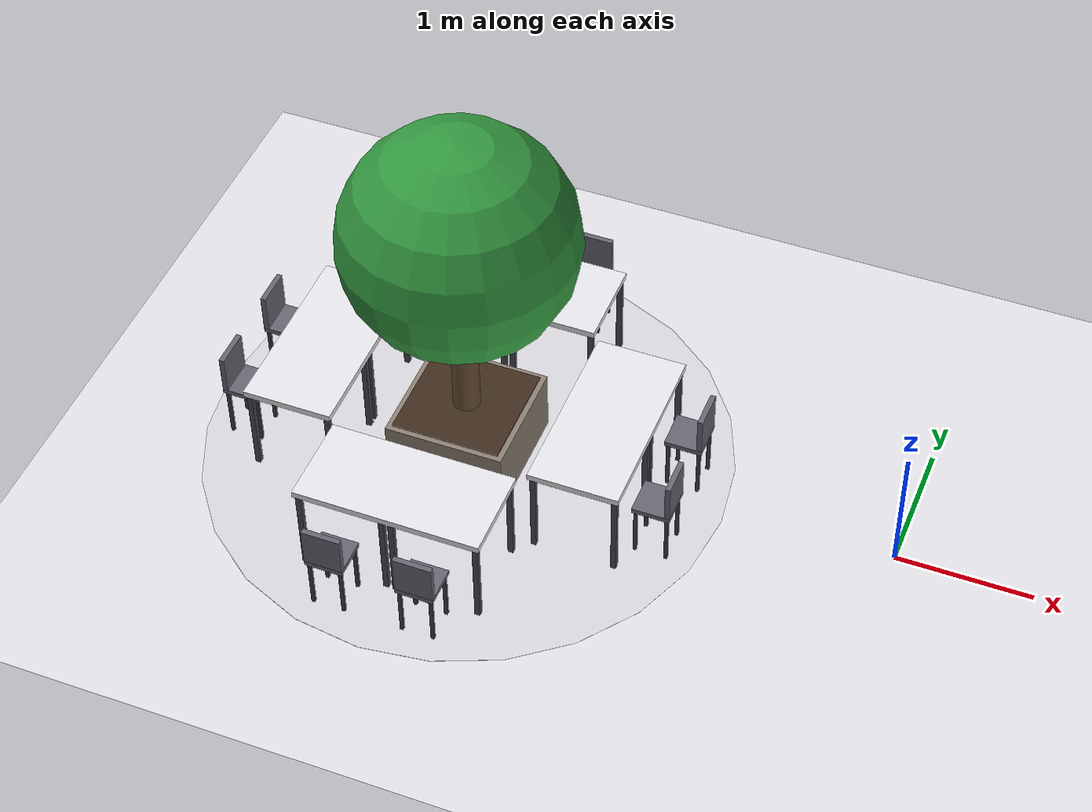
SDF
<sdf version="1.8">
 <world name="restaurant_blueprint_world">
  <model name="ground_plane">
   <static>true</static>
   <link name="link">
    <collision name="collision">
     <geometry><plane><normal>0 0 1</normal><size>120 120</size></plane></geometry>
    </collision>
    <visual name="visual">
     <geometry><plane><normal>0 0 1</normal><size>120 120</size></plane></geometry>
     <material>
      <ambient>0.88 0.88 0.90 1</ambient>
      <diffuse>0.88 0.88 0.90 1</diffuse>
      <specular>0.1 0.1 0.1 1</specular>
     </material>
    </visual>
   </link>
  </model>
  <model name="restaurant_boundary">
   <static>true</static>
   <link name="group_center">
    <visual name="group_center_floor_disc_vis">
     <pose>-3.195 -0.140 0.003 0 0 0</pose>
     <geometry><cylinder><radius>1.95</radius><length>0.002</length></cylinder></geometry>
     <material><ambient>0.84 0.84 0.86 1</ambient><diffuse>0.84 0.84 0.86 1</diffuse></material>
    </visual>
    <visual name="center_planter_vis">
     <pose>-3.195 -0.140 0.250 0 0 0</pose>
     <geometry><box><size>0.89 0.89 0.50</size></box></geometry>
     <material><ambient>0.45 0.40 0.35 1</ambient><diffuse>0.55 0.50 0.45 1</diffuse></material>
    </visual>
    <collision name="center_planter_col">
     <pose>-3.195 -0.140 0.250 0 0 0</pose>
     <geometry><box><size>0.89 0.89 0.50</size></box></geometry>
    </collision>
    <visual name="center_planter_soil_vis">
     <pose>-3.195 -0.140 0.505 0 0 0</pose>
     <geometry><box><size>0.81 0.81 0.02</size></box></geometry>
     <material><ambient>0.20 0.15 0.10 1</ambient><diffuse>0.25 0.18 0.12 1</diffuse></material>
    </visual>
    <visual name="center_tree_trunk_vis">
     <pose>-3.195 -0.140 1.200 0 0 0</pose>
     <geometry><cylinder><radius>0.10</radius><length>1.40</length></cylinder></geometry>
     <material><ambient>0.35 0.25 0.15 1</ambient><diffuse>0.40 0.30 0.20 1</diffuse></material>
    </visual>
    <collision name="center_tree_trunk_col">
     <pose>-3.195 -0.140 1.200 0 0 0</pose>
     <geometry><cylinder><radius>0.10</radius><length>1.40</length></cylinder></geometry>
    </collision>
    <visual name="center_tree_foliage_vis">
     <pose>-3.195 -0.140 2.100 0 0 0</pose>
     <geometry><sphere><radius>0.85</radius></sphere></geometry>
     <material><ambient>0.15 0.50 0.20 1</ambient><diffuse>0.20 0.60 0.25 1</diffuse></material>
    </visual>
    <visual name="center_table_n_vis">
     <pose>-3.195 0.940 0.725 0.0000 0.0000 0.0000</pose>
     <geometry><box><size>1.38 0.67 0.05</size></box></geometry>
     <material><ambient>0.85 0.85 0.88 1</ambient><diffuse>0.90 0.90 0.92 1</diffuse></material>
    </visual>
    <visual name="center_table_n_leg_1_vis">
     <pose>-2.540 1.240 0.350 0 0 0.0000</pose>
     <geometry><box><size>0.04 0.04 0.70</size></box></geometry>
     <material><ambient>0.22 0.22 0.25 1</ambient><diffuse>0.28 0.28 0.32 1</diffuse></material>
    </visual>
    <visual name="center_table_n_leg_2_vis">
     <pose>-2.540 0.640 0.350 0 0 0.0000</pose>
     <geometry><box><size>0.04 0.04 0.70</size></box></geometry>
     <material><ambient>0.22 0.22 0.25 1</ambient><diffuse>0.28 0.28 0.32 1</diffuse></material>
    </visual>
    <visual name="center_table_n_leg_3_vis">
     <pose>-3.160 1.240 0.350 0 0 0.0000</pose>
     <geometry><box><size>0.04 0.04 0.70</size></box></geometry>
     <material><ambient>0.22 0.22 0.25 1</ambient><diffuse>0.28 0.28 0.32 1</diffuse></material>
    </visual>
    <visual name="center_table_n_leg_4_vis">
     <pose>-3.160 0.640 0.350 0 0 0.0000</pose>
     <geometry><box><size>0.04 0.04 0.70</size></box></geometry>
     <material><ambient>0.22 0.22 0.25 1</ambient><diffuse>0.28 0.28 0.32 1</diffuse></material>
    </visual>
    <visual name="center_table_n_leg_5_vis">
     <pose>-3.230 1.240 0.350 0 0 0.0000</pose>
     <geometry><box><size>0.04 0.04 0.70</size></box></geometry>
     <material><ambient>0.22 0.22 0.25 1</ambient><diffuse>0.28 0.28 0.32 1</diffuse></material>
    </visual>
    <visual name="center_table_n_leg_6_vis">
     <pose>-3.230 0.640 0.350 0 0 0.0000</pose>
     <geometry><box><size>0.04 0.04 0.70</size></box></geometry>
     <material><ambient>0.22 0.22 0.25 1</ambient><diffuse>0.28 0.28 0.32 1</diffuse></material>
    </visual>
    <visual name="center_table_n_leg_7_vis">
     <pose>-3.850 1.240 0.350 0 0 0.0000</pose>
     <geometry><box><size>0.04 0.04 0.70</size></box></geometry>
     <material><ambient>0.22 0.22 0.25 1</ambient><diffuse>0.28 0.28 0.32 1</diffuse></material>
    </visual>
    <visual name="center_table_n_leg_8_vis">
     <pose>-3.850 0.640 0.350 0 0 0.0000</pose>
     <geometry><box><size>0.04 0.04 0.70</size></box></geometry>
     <material><ambient>0.22 0.22 0.25 1</ambient><diffuse>0.28 0.28 0.32 1</diffuse></material>
    </visual>
    <collision name="center_table_n_col">
     <pose>-3.195 0.940 0.725 0.0000 0.0000 0.0000</pose>
     <geometry><box><size>1.38 0.67 0.05</size></box></geometry>
    </collision>
    <collision name="center_table_n_leg_1_col">
     <pose>-2.540 1.240 0.350 0 0 0.0000</pose>
     <geometry><box><size>0.04 0.04 0.70</size></box></geometry>
    </collision>
    <collision name="center_table_n_leg_2_col">
     <pose>-2.540 0.640 0.350 0 0 0.0000</pose>
     <geometry><box><size>0.04 0.04 0.70</size></box></geometry>
    </collision>
    <collision name="center_table_n_leg_3_col">
     <pose>-3.160 1.240 0.350 0 0 0.0000</pose>
     <geometry><box><size>0.04 0.04 0.70</size></box></geometry>
    </collision>
    <collision name="center_table_n_leg_4_col">
     <pose>-3.160 0.640 0.350 0 0 0.0000</pose>
     <geometry><box><size>0.04 0.04 0.70</size></box></geometry>
    </collision>
    <collision name="center_table_n_leg_5_col">
     <pose>-3.230 1.240 0.350 0 0 0.0000</pose>
     <geometry><box><size>0.04 0.04 0.70</size></box></geometry>
    </collision>
    <collision name="center_table_n_leg_6_col">
     <pose>-3.230 0.640 0.350 0 0 0.0000</pose>
     <geometry><box><size>0.04 0.04 0.70</size></box></geometry>
    </collision>
    <collision name="center_table_n_leg_7_col">
     <pose>-3.850 1.240 0.350 0 0 0.0000</pose>
     <geometry><box><size>0.04 0.04 0.70</size></box></geometry>
    </collision>
    <collision name="center_table_n_leg_8_col">
     <pose>-3.850 0.640 0.350 0 0 0.0000</pose>
     <geometry><box><size>0.04 0.04 0.70</size></box></geometry>
    </collision>
    <visual name="center_chair_n1_seat_vis">
     <pose>-3.530 1.436 0.430 0.0000 0.0000 0.0000</pose>
     <geometry><box><size>0.28 0.28 0.04</size></box></geometry>
     <material><ambient>0.30 0.30 0.33 1</ambient><diffuse>0.40 0.40 0.45 1</diffuse></material>
    </visual>
    <visual name="center_chair_n1_back_vis">
     <pose>-3.530 1.556 0.600 0 0 0.0000</pose>
     <geometry><box><size>0.28 0.04 0.30</size></box></geometry>
     <material><ambient>0.30 0.30 0.33 1</ambient><diffuse>0.40 0.40 0.45 1</diffuse></material>
    </visual>
    <visual name="center_chair_n1_leg_1_vis">
     <pose>-3.415 1.551 0.205 0 0 0.0000</pose>
     <geometry><box><size>0.025 0.025 0.41</size></box></geometry>
     <material><ambient>0.20 0.20 0.22 1</ambient><diffuse>0.25 0.25 0.28 1</diffuse></material>
    </visual>
    <visual name="center_chair_n1_leg_2_vis">
     <pose>-3.645 1.551 0.205 0 0 0.0000</pose>
     <geometry><box><size>0.025 0.025 0.41</size></box></geometry>
     <material><ambient>0.20 0.20 0.22 1</ambient><diffuse>0.25 0.25 0.28 1</diffuse></material>
    </visual>
    <visual name="center_chair_n1_leg_3_vis">
     <pose>-3.415 1.321 0.205 0 0 0.0000</pose>
     <geometry><box><size>0.025 0.025 0.41</size></box></geometry>
     <material><ambient>0.20 0.20 0.22 1</ambient><diffuse>0.25 0.25 0.28 1</diffuse></material>
    </visual>
    <visual name="center_chair_n1_leg_4_vis">
     <pose>-3.645 1.321 0.205 0 0 0.0000</pose>
     <geometry><box><size>0.025 0.025 0.41</size></box></geometry>
     <material><ambient>0.20 0.20 0.22 1</ambient><diffuse>0.25 0.25 0.28 1</diffuse></material>
    </visual>
    <collision name="center_chair_n1_seat_col">
     <pose>-3.530 1.436 0.430 0.0000 0.0000 0.0000</pose>
     <geometry><box><size>0.28 0.28 0.04</size></box></geometry>
    </collision>
    <collision name="center_chair_n1_back_col">
     <pose>-3.530 1.556 0.600 0 0 0.0000</pose>
     <geometry><box><size>0.28 0.04 0.30</size></box></geometry>
    </collision>
    <collision name="center_chair_n1_leg_1_col">
     <pose>-3.415 1.551 0.205 0 0 0.0000</pose>
     <geometry><box><size>0.025 0.025 0.41</size></box></geometry>
    </collision>
    <collision name="center_chair_n1_leg_2_col">
     <pose>-3.645 1.551 0.205 0 0 0.0000</pose>
     <geometry><box><size>0.025 0.025 0.41</size></box></geometry>
    </collision>
    <collision name="center_chair_n1_leg_3_col">
     <pose>-3.415 1.321 0.205 0 0 0.0000</pose>
     <geometry><box><size>0.025 0.025 0.41</size></box></geometry>
    </collision>
    <collision name="center_chair_n1_leg_4_col">
     <pose>-3.645 1.321 0.205 0 0 0.0000</pose>
     <geometry><box><size>0.025 0.025 0.41</size></box></geometry>
    </collision>
    <visual name="center_chair_n2_seat_vis">
     <pose>-2.860 1.436 0.430 0.0000 0.0000 0.0000</pose>
     <geometry><box><size>0.28 0.28 0.04</size></box></geometry>
     <material><ambient>0.30 0.30 0.33 1</ambient><diffuse>0.40 0.40 0.45 1</diffuse></material>
    </visual>
    <visual name="center_chair_n2_back_vis">
     <pose>-2.860 1.556 0.600 0 0 0.0000</pose>
     <geometry><box><size>0.28 0.04 0.30</size></box></geometry>
     <material><ambient>0.30 0.30 0.33 1</ambient><diffuse>0.40 0.40 0.45 1</diffuse></material>
    </visual>
    <visual name="center_chair_n2_leg_1_vis">
     <pose>-2.745 1.551 0.205 0 0 0.0000</pose>
     <geometry><box><size>0.025 0.025 0.41</size></box></geometry>
     <material><ambient>0.20 0.20 0.22 1</ambient><diffuse>0.25 0.25 0.28 1</diffuse></material>
    </visual>
    <visual name="center_chair_n2_leg_2_vis">
     <pose>-2.975 1.551 0.205 0 0 0.0000</pose>
     <geometry><box><size>0.025 0.025 0.41</size></box></geometry>
     <material><ambient>0.20 0.20 0.22 1</ambient><diffuse>0.25 0.25 0.28 1</diffuse></material>
    </visual>
    <visual name="center_chair_n2_leg_3_vis">
     <pose>-2.745 1.321 0.205 0 0 0.0000</pose>
     <geometry><box><size>0.025 0.025 0.41</size></box></geometry>
     <material><ambient>0.20 0.20 0.22 1</ambient><diffuse>0.25 0.25 0.28 1</diffuse></material>
    </visual>
    <visual name="center_chair_n2_leg_4_vis">
     <pose>-2.975 1.321 0.205 0 0 0.0000</pose>
     <geometry><box><size>0.025 0.025 0.41</size></box></geometry>
     <material><ambient>0.20 0.20 0.22 1</ambient><diffuse>0.25 0.25 0.28 1</diffuse></material>
    </visual>
    <collision name="center_chair_n2_seat_col">
     <pose>-2.860 1.436 0.430 0.0000 0.0000 0.0000</pose>
     <geometry><box><size>0.28 0.28 0.04</size></box></geometry>
    </collision>
    <collision name="center_chair_n2_back_col">
     <pose>-2.860 1.556 0.600 0 0 0.0000</pose>
     <geometry><box><size>0.28 0.04 0.30</size></box></geometry>
    </collision>
    <collision name="center_chair_n2_leg_1_col">
     <pose>-2.745 1.551 0.205 0 0 0.0000</pose>
     <geometry><box><size>0.025 0.025 0.41</size></box></geometry>
    </collision>
    <collision name="center_chair_n2_leg_2_col">
     <pose>-2.975 1.551 0.205 0 0 0.0000</pose>
     <geometry><box><size>0.025 0.025 0.41</size></box></geometry>
    </collision>
    <collision name="center_chair_n2_leg_3_col">
     <pose>-2.745 1.321 0.205 0 0 0.0000</pose>
     <geometry><box><size>0.025 0.025 0.41</size></box></geometry>
    </collision>
    <collision name="center_chair_n2_leg_4_col">
     <pose>-2.975 1.321 0.205 0 0 0.0000</pose>
     <geometry><box><size>0.025 0.025 0.41</size></box></geometry>
    </collision>
    <visual name="center_table_s_vis">
     <pose>-3.195 -1.220 0.725 0.0000 0.0000 0.0000</pose>
     <geometry><box><size>1.38 0.67 0.05</size></box></geometry>
     <material><ambient>0.85 0.85 0.88 1</ambient><diffuse>0.90 0.90 0.92 1</diffuse></material>
    </visual>
    <visual name="center_table_s_leg_1_vis">
     <pose>-2.540 -0.920 0.350 0 0 0.0000</pose>
     <geometry><box><size>0.04 0.04 0.70</size></box></geometry>
     <material><ambient>0.22 0.22 0.25 1</ambient><diffuse>0.28 0.28 0.32 1</diffuse></material>
    </visual>
    <visual name="center_table_s_leg_2_vis">
     <pose>-2.540 -1.520 0.350 0 0 0.0000</pose>
     <geometry><box><size>0.04 0.04 0.70</size></box></geometry>
     <material><ambient>0.22 0.22 0.25 1</ambient><diffuse>0.28 0.28 0.32 1</diffuse></material>
    </visual>
    <visual name="center_table_s_leg_3_vis">
     <pose>-3.160 -0.920 0.350 0 0 0.0000</pose>
     <geometry><box><size>0.04 0.04 0.70</size></box></geometry>
     <material><ambient>0.22 0.22 0.25 1</ambient><diffuse>0.28 0.28 0.32 1</diffuse></material>
    </visual>
    <visual name="center_table_s_leg_4_vis">
     <pose>-3.160 -1.520 0.350 0 0 0.0000</pose>
     <geometry><box><size>0.04 0.04 0.70</size></box></geometry>
     <material><ambient>0.22 0.22 0.25 1</ambient><diffuse>0.28 0.28 0.32 1</diffuse></material>
    </visual>
    <visual name="center_table_s_leg_5_vis">
     <pose>-3.230 -0.920 0.350 0 0 0.0000</pose>
     <geometry><box><size>0.04 0.04 0.70</size></box></geometry>
     <material><ambient>0.22 0.22 0.25 1</ambient><diffuse>0.28 0.28 0.32 1</diffuse></material>
    </visual>
    <visual name="center_table_s_leg_6_vis">
     <pose>-3.230 -1.520 0.350 0 0 0.0000</pose>
     <geometry><box><size>0.04 0.04 0.70</size></box></geometry>
     <material><ambient>0.22 0.22 0.25 1</ambient><diffuse>0.28 0.28 0.32 1</diffuse></material>
    </visual>
    <visual name="center_table_s_leg_7_vis">
     <pose>-3.850 -0.920 0.350 0 0 0.0000</pose>
     <geometry><box><size>0.04 0.04 0.70</size></box></geometry>
     <material><ambient>0.22 0.22 0.25 1</ambient><diffuse>0.28 0.28 0.32 1</diffuse></material>
    </visual>
    <visual name="center_table_s_leg_8_vis">
     <pose>-3.850 -1.520 0.350 0 0 0.0000</pose>
     <geometry><box><size>0.04 0.04 0.70</size></box></geometry>
     <material><ambient>0.22 0.22 0.25 1</ambient><diffuse>0.28 0.28 0.32 1</diffuse></material>
    </visual>
    <collision name="center_table_s_col">
     <pose>-3.195 -1.220 0.725 0.0000 0.0000 0.0000</pose>
     <geometry><box><size>1.38 0.67 0.05</size></box></geometry>
    </collision>
    <collision name="center_table_s_leg_1_col">
     <pose>-2.540 -0.920 0.350 0 0 0.0000</pose>
     <geometry><box><size>0.04 0.04 0.70</size></box></geometry>
    </collision>
    <collision name="center_table_s_leg_2_col">
     <pose>-2.540 -1.520 0.350 0 0 0.0000</pose>
     <geometry><box><size>0.04 0.04 0.70</size></box></geometry>
    </collision>
    <collision name="center_table_s_leg_3_col">
     <pose>-3.160 -0.920 0.350 0 0 0.0000</pose>
     <geometry><box><size>0.04 0.04 0.70</size></box></geometry>
    </collision>
    <collision name="center_table_s_leg_4_col">
     <pose>-3.160 -1.520 0.350 0 0 0.0000</pose>
     <geometry><box><size>0.04 0.04 0.70</size></box></geometry>
    </collision>
    <collision name="center_table_s_leg_5_col">
     <pose>-3.230 -0.920 0.350 0 0 0.0000</pose>
     <geometry><box><size>0.04 0.04 0.70</size></box></geometry>
    </collision>
    <collision name="center_table_s_leg_6_col">
     <pose>-3.230 -1.520 0.350 0 0 0.0000</pose>
     <geometry><box><size>0.04 0.04 0.70</size></box></geometry>
    </collision>
    <collision name="center_table_s_leg_7_col">
     <pose>-3.850 -0.920 0.350 0 0 0.0000</pose>
     <geometry><box><size>0.04 0.04 0.70</size></box></geometry>
    </collision>
    <collision name="center_table_s_leg_8_col">
     <pose>-3.850 -1.520 0.350 0 0 0.0000</pose>
     <geometry><box><size>0.04 0.04 0.70</size></box></geometry>
    </collision>
    <visual name="center_chair_s1_seat_vis">
     <pose>-3.530 -1.716 0.430 0.0000 0.0000 0.0000</pose>
     <geometry><box><size>0.28 0.28 0.04</size></box></geometry>
     <material><ambient>0.30 0.30 0.33 1</ambient><diffuse>0.40 0.40 0.45 1</diffuse></material>
    </visual>
    <visual name="center_chair_s1_back_vis">
     <pose>-3.530 -1.836 0.600 0 0 0.0000</pose>
     <geometry><box><size>0.28 0.04 0.30</size></box></geometry>
     <material><ambient>0.30 0.30 0.33 1</ambient><diffuse>0.40 0.40 0.45 1</diffuse></material>
    </visual>
    <visual name="center_chair_s1_leg_1_vis">
     <pose>-3.415 -1.601 0.205 0 0 0.0000</pose>
     <geometry><box><size>0.025 0.025 0.41</size></box></geometry>
     <material><ambient>0.20 0.20 0.22 1</ambient><diffuse>0.25 0.25 0.28 1</diffuse></material>
    </visual>
    <visual name="center_chair_s1_leg_2_vis">
     <pose>-3.645 -1.601 0.205 0 0 0.0000</pose>
     <geometry><box><size>0.025 0.025 0.41</size></box></geometry>
     <material><ambient>0.20 0.20 0.22 1</ambient><diffuse>0.25 0.25 0.28 1</diffuse></material>
    </visual>
    <visual name="center_chair_s1_leg_3_vis">
     <pose>-3.415 -1.831 0.205 0 0 0.0000</pose>
     <geometry><box><size>0.025 0.025 0.41</size></box></geometry>
     <material><ambient>0.20 0.20 0.22 1</ambient><diffuse>0.25 0.25 0.28 1</diffuse></material>
    </visual>
    <visual name="center_chair_s1_leg_4_vis">
     <pose>-3.645 -1.831 0.205 0 0 0.0000</pose>
     <geometry><box><size>0.025 0.025 0.41</size></box></geometry>
     <material><ambient>0.20 0.20 0.22 1</ambient><diffuse>0.25 0.25 0.28 1</diffuse></material>
    </visual>
    <collision name="center_chair_s1_seat_col">
     <pose>-3.530 -1.716 0.430 0.0000 0.0000 0.0000</pose>
     <geometry><box><size>0.28 0.28 0.04</size></box></geometry>
    </collision>
    <collision name="center_chair_s1_back_col">
     <pose>-3.530 -1.836 0.600 0 0 0.0000</pose>
     <geometry><box><size>0.28 0.04 0.30</size></box></geometry>
    </collision>
    <collision name="center_chair_s1_leg_1_col">
     <pose>-3.415 -1.601 0.205 0 0 0.0000</pose>
     <geometry><box><size>0.025 0.025 0.41</size></box></geometry>
    </collision>
    <collision name="center_chair_s1_leg_2_col">
     <pose>-3.645 -1.601 0.205 0 0 0.0000</pose>
     <geometry><box><size>0.025 0.025 0.41</size></box></geometry>
    </collision>
    <collision name="center_chair_s1_leg_3_col">
     <pose>-3.415 -1.831 0.205 0 0 0.0000</pose>
     <geometry><box><size>0.025 0.025 0.41</size></box></geometry>
    </collision>
    <collision name="center_chair_s1_leg_4_col">
     <pose>-3.645 -1.831 0.205 0 0 0.0000</pose>
     <geometry><box><size>0.025 0.025 0.41</size></box></geometry>
    </collision>
    <visual name="center_chair_s2_seat_vis">
     <pose>-2.860 -1.716 0.430 0.0000 0.0000 0.0000</pose>
     <geometry><box><size>0.28 0.28 0.04</size></box></geometry>
     <material><ambient>0.30 0.30 0.33 1</ambient><diffuse>0.40 0.40 0.45 1</diffuse></material>
    </visual>
    <visual name="center_chair_s2_back_vis">
     <pose>-2.860 -1.836 0.600 0 0 0.0000</pose>
     <geometry><box><size>0.28 0.04 0.30</size></box></geometry>
     <material><ambient>0.30 0.30 0.33 1</ambient><diffuse>0.40 0.40 0.45 1</diffuse></material>
    </visual>
    <visual name="center_chair_s2_leg_1_vis">
     <pose>-2.745 -1.601 0.205 0 0 0.0000</pose>
     <geometry><box><size>0.025 0.025 0.41</size></box></geometry>
     <material><ambient>0.20 0.20 0.22 1</ambient><diffuse>0.25 0.25 0.28 1</diffuse></material>
    </visual>
    <visual name="center_chair_s2_leg_2_vis">
     <pose>-2.975 -1.601 0.205 0 0 0.0000</pose>
     <geometry><box><size>0.025 0.025 0.41</size></box></geometry>
     <material><ambient>0.20 0.20 0.22 1</ambient><diffuse>0.25 0.25 0.28 1</diffuse></material>
    </visual>
    <visual name="center_chair_s2_leg_3_vis">
     <pose>-2.745 -1.831 0.205 0 0 0.0000</pose>
     <geometry><box><size>0.025 0.025 0.41</size></box></geometry>
     <material><ambient>0.20 0.20 0.22 1</ambient><diffuse>0.25 0.25 0.28 1</diffuse></material>
    </visual>
    <visual name="center_chair_s2_leg_4_vis">
     <pose>-2.975 -1.831 0.205 0 0 0.0000</pose>
     <geometry><box><size>0.025 0.025 0.41</size></box></geometry>
     <material><ambient>0.20 0.20 0.22 1</ambient><diffuse>0.25 0.25 0.28 1</diffuse></material>
    </visual>
    <collision name="center_chair_s2_seat_col">
     <pose>-2.860 -1.716 0.430 0.0000 0.0000 0.0000</pose>
     <geometry><box><size>0.28 0.28 0.04</size></box></geometry>
    </collision>
    <collision name="center_chair_s2_back_col">
     <pose>-2.860 -1.836 0.600 0 0 0.0000</pose>
     <geometry><box><size>0.28 0.04 0.30</size></box></geometry>
    </collision>
    <collision name="center_chair_s2_leg_1_col">
     <pose>-2.745 -1.601 0.205 0 0 0.0000</pose>
     <geometry><box><size>0.025 0.025 0.41</size></box></geometry>
    </collision>
    <collision name="center_chair_s2_leg_2_col">
     <pose>-2.975 -1.601 0.205 0 0 0.0000</pose>
     <geometry><box><size>0.025 0.025 0.41</size></box></geometry>
    </collision>
    <collision name="center_chair_s2_leg_3_col">
     <pose>-2.745 -1.831 0.205 0 0 0.0000</pose>
     <geometry><box><size>0.025 0.025 0.41</size></box></geometry>
    </collision>
    <collision name="center_chair_s2_leg_4_col">
     <pose>-2.975 -1.831 0.205 0 0 0.0000</pose>
     <geometry><box><size>0.025 0.025 0.41</size></box></geometry>
    </collision>
    <visual name="center_table_e_vis">
     <pose>-2.115 -0.140 0.725 0.0000 0.0000 0.0000</pose>
     <geometry><box><size>0.67 1.38 0.05</size></box></geometry>
     <material><ambient>0.85 0.85 0.88 1</ambient><diffuse>0.90 0.90 0.92 1</diffuse></material>
    </visual>
    <visual name="center_table_e_leg_1_vis">
     <pose>-1.815 0.515 0.350 0 0 0.0000</pose>
     <geometry><box><size>0.04 0.04 0.70</size></box></geometry>
     <material><ambient>0.22 0.22 0.25 1</ambient><diffuse>0.28 0.28 0.32 1</diffuse></material>
    </visual>
    <visual name="center_table_e_leg_2_vis">
     <pose>-2.415 0.515 0.350 0 0 0.0000</pose>
     <geometry><box><size>0.04 0.04 0.70</size></box></geometry>
     <material><ambient>0.22 0.22 0.25 1</ambient><diffuse>0.28 0.28 0.32 1</diffuse></material>
    </visual>
    <visual name="center_table_e_leg_3_vis">
     <pose>-1.815 -0.105 0.350 0 0 0.0000</pose>
     <geometry><box><size>0.04 0.04 0.70</size></box></geometry>
     <material><ambient>0.22 0.22 0.25 1</ambient><diffuse>0.28 0.28 0.32 1</diffuse></material>
    </visual>
    <visual name="center_table_e_leg_4_vis">
     <pose>-2.415 -0.105 0.350 0 0 0.0000</pose>
     <geometry><box><size>0.04 0.04 0.70</size></box></geometry>
     <material><ambient>0.22 0.22 0.25 1</ambient><diffuse>0.28 0.28 0.32 1</diffuse></material>
    </visual>
    <visual name="center_table_e_leg_5_vis">
     <pose>-1.815 -0.175 0.350 0 0 0.0000</pose>
     <geometry><box><size>0.04 0.04 0.70</size></box></geometry>
     <material><ambient>0.22 0.22 0.25 1</ambient><diffuse>0.28 0.28 0.32 1</diffuse></material>
    </visual>
    <visual name="center_table_e_leg_6_vis">
     <pose>-2.415 -0.175 0.350 0 0 0.0000</pose>
     <geometry><box><size>0.04 0.04 0.70</size></box></geometry>
     <material><ambient>0.22 0.22 0.25 1</ambient><diffuse>0.28 0.28 0.32 1</diffuse></material>
    </visual>
    <visual name="center_table_e_leg_7_vis">
     <pose>-1.815 -0.795 0.350 0 0 0.0000</pose>
     <geometry><box><size>0.04 0.04 0.70</size></box></geometry>
     <material><ambient>0.22 0.22 0.25 1</ambient><diffuse>0.28 0.28 0.32 1</diffuse></material>
    </visual>
    <visual name="center_table_e_leg_8_vis">
     <pose>-2.415 -0.795 0.350 0 0 0.0000</pose>
     <geometry><box><size>0.04 0.04 0.70</size></box></geometry>
     <material><ambient>0.22 0.22 0.25 1</ambient><diffuse>0.28 0.28 0.32 1</diffuse></material>
    </visual>
    <collision name="center_table_e_col">
     <pose>-2.115 -0.140 0.725 0.0000 0.0000 0.0000</pose>
     <geometry><box><size>0.67 1.38 0.05</size></box></geometry>
    </collision>
    <collision name="center_table_e_leg_1_col">
     <pose>-1.815 0.515 0.350 0 0 0.0000</pose>
     <geometry><box><size>0.04 0.04 0.70</size></box></geometry>
    </collision>
    <collision name="center_table_e_leg_2_col">
     <pose>-2.415 0.515 0.350 0 0 0.0000</pose>
     <geometry><box><size>0.04 0.04 0.70</size></box></geometry>
    </collision>
    <collision name="center_table_e_leg_3_col">
     <pose>-1.815 -0.105 0.350 0 0 0.0000</pose>
     <geometry><box><size>0.04 0.04 0.70</size></box></geometry>
    </collision>
    <collision name="center_table_e_leg_4_col">
     <pose>-2.415 -0.105 0.350 0 0 0.0000</pose>
     <geometry><box><size>0.04 0.04 0.70</size></box></geometry>
    </collision>
    <collision name="center_table_e_leg_5_col">
     <pose>-1.815 -0.175 0.350 0 0 0.0000</pose>
     <geometry><box><size>0.04 0.04 0.70</size></box></geometry>
    </collision>
    <collision name="center_table_e_leg_6_col">
     <pose>-2.415 -0.175 0.350 0 0 0.0000</pose>
     <geometry><box><size>0.04 0.04 0.70</size></box></geometry>
    </collision>
    <collision name="center_table_e_leg_7_col">
     <pose>-1.815 -0.795 0.350 0 0 0.0000</pose>
     <geometry><box><size>0.04 0.04 0.70</size></box></geometry>
    </collision>
    <collision name="center_table_e_leg_8_col">
     <pose>-2.415 -0.795 0.350 0 0 0.0000</pose>
     <geometry><box><size>0.04 0.04 0.70</size></box></geometry>
    </collision>
    <visual name="center_chair_e1_seat_vis">
     <pose>-1.619 0.195 0.430 0.0000 0.0000 0.0000</pose>
     <geometry><box><size>0.28 0.28 0.04</size></box></geometry>
     <material><ambient>0.30 0.30 0.33 1</ambient><diffuse>0.40 0.40 0.45 1</diffuse></material>
    </visual>
    <visual name="center_chair_e1_back_vis">
     <pose>-1.499 0.195 0.600 0 0 0.0000</pose>
     <geometry><box><size>0.04 0.28 0.30</size></box></geometry>
     <material><ambient>0.30 0.30 0.33 1</ambient><diffuse>0.40 0.40 0.45 1</diffuse></material>
    </visual>
    <visual name="center_chair_e1_leg_1_vis">
     <pose>-1.504 0.310 0.205 0 0 0.0000</pose>
     <geometry><box><size>0.025 0.025 0.41</size></box></geometry>
     <material><ambient>0.20 0.20 0.22 1</ambient><diffuse>0.25 0.25 0.28 1</diffuse></material>
    </visual>
    <visual name="center_chair_e1_leg_2_vis">
     <pose>-1.734 0.310 0.205 0 0 0.0000</pose>
     <geometry><box><size>0.025 0.025 0.41</size></box></geometry>
     <material><ambient>0.20 0.20 0.22 1</ambient><diffuse>0.25 0.25 0.28 1</diffuse></material>
    </visual>
    <visual name="center_chair_e1_leg_3_vis">
     <pose>-1.504 0.080 0.205 0 0 0.0000</pose>
     <geometry><box><size>0.025 0.025 0.41</size></box></geometry>
     <material><ambient>0.20 0.20 0.22 1</ambient><diffuse>0.25 0.25 0.28 1</diffuse></material>
    </visual>
    <visual name="center_chair_e1_leg_4_vis">
     <pose>-1.734 0.080 0.205 0 0 0.0000</pose>
     <geometry><box><size>0.025 0.025 0.41</size></box></geometry>
     <material><ambient>0.20 0.20 0.22 1</ambient><diffuse>0.25 0.25 0.28 1</diffuse></material>
    </visual>
    <collision name="center_chair_e1_seat_col">
     <pose>-1.619 0.195 0.430 0.0000 0.0000 0.0000</pose>
     <geometry><box><size>0.28 0.28 0.04</size></box></geometry>
    </collision>
    <collision name="center_chair_e1_back_col">
     <pose>-1.499 0.195 0.600 0 0 0.0000</pose>
     <geometry><box><size>0.04 0.28 0.30</size></box></geometry>
    </collision>
    <collision name="center_chair_e1_leg_1_col">
     <pose>-1.504 0.310 0.205 0 0 0.0000</pose>
     <geometry><box><size>0.025 0.025 0.41</size></box></geometry>
    </collision>
    <collision name="center_chair_e1_leg_2_col">
     <pose>-1.734 0.310 0.205 0 0 0.0000</pose>
     <geometry><box><size>0.025 0.025 0.41</size></box></geometry>
    </collision>
    <collision name="center_chair_e1_leg_3_col">
     <pose>-1.504 0.080 0.205 0 0 0.0000</pose>
     <geometry><box><size>0.025 0.025 0.41</size></box></geometry>
    </collision>
    <collision name="center_chair_e1_leg_4_col">
     <pose>-1.734 0.080 0.205 0 0 0.0000</pose>
     <geometry><box><size>0.025 0.025 0.41</size></box></geometry>
    </collision>
    <visual name="center_chair_e2_seat_vis">
     <pose>-1.619 -0.475 0.430 0.0000 0.0000 0.0000</pose>
     <geometry><box><size>0.28 0.28 0.04</size></box></geometry>
     <material><ambient>0.30 0.30 0.33 1</ambient><diffuse>0.40 0.40 0.45 1</diffuse></material>
    </visual>
    <visual name="center_chair_e2_back_vis">
     <pose>-1.499 -0.475 0.600 0 0 0.0000</pose>
     <geometry><box><size>0.04 0.28 0.30</size></box></geometry>
     <material><ambient>0.30 0.30 0.33 1</ambient><diffuse>0.40 0.40 0.45 1</diffuse></material>
    </visual>
    <visual name="center_chair_e2_leg_1_vis">
     <pose>-1.504 -0.360 0.205 0 0 0.0000</pose>
     <geometry><box><size>0.025 0.025 0.41</size></box></geometry>
     <material><ambient>0.20 0.20 0.22 1</ambient><diffuse>0.25 0.25 0.28 1</diffuse></material>
    </visual>
    <visual name="center_chair_e2_leg_2_vis">
     <pose>-1.734 -0.360 0.205 0 0 0.0000</pose>
     <geometry><box><size>0.025 0.025 0.41</size></box></geometry>
     <material><ambient>0.20 0.20 0.22 1</ambient><diffuse>0.25 0.25 0.28 1</diffuse></material>
    </visual>
    <visual name="center_chair_e2_leg_3_vis">
     <pose>-1.504 -0.590 0.205 0 0 0.0000</pose>
     <geometry><box><size>0.025 0.025 0.41</size></box></geometry>
     <material><ambient>0.20 0.20 0.22 1</ambient><diffuse>0.25 0.25 0.28 1</diffuse></material>
    </visual>
    <visual name="center_chair_e2_leg_4_vis">
     <pose>-1.734 -0.590 0.205 0 0 0.0000</pose>
     <geometry><box><size>0.025 0.025 0.41</size></box></geometry>
     <material><ambient>0.20 0.20 0.22 1</ambient><diffuse>0.25 0.25 0.28 1</diffuse></material>
    </visual>
    <collision name="center_chair_e2_seat_col">
     <pose>-1.619 -0.475 0.430 0.0000 0.0000 0.0000</pose>
     <geometry><box><size>0.28 0.28 0.04</size></box></geometry>
    </collision>
    <collision name="center_chair_e2_back_col">
     <pose>-1.499 -0.475 0.600 0 0 0.0000</pose>
     <geometry><box><size>0.04 0.28 0.30</size></box></geometry>
    </collision>
    <collision name="center_chair_e2_leg_1_col">
     <pose>-1.504 -0.360 0.205 0 0 0.0000</pose>
     <geometry><box><size>0.025 0.025 0.41</size></box></geometry>
    </collision>
    <collision name="center_chair_e2_leg_2_col">
     <pose>-1.734 -0.360 0.205 0 0 0.0000</pose>
     <geometry><box><size>0.025 0.025 0.41</size></box></geometry>
    </collision>
    <collision name="center_chair_e2_leg_3_col">
     <pose>-1.504 -0.590 0.205 0 0 0.0000</pose>
     <geometry><box><size>0.025 0.025 0.41</size></box></geometry>
    </collision>
    <collision name="center_chair_e2_leg_4_col">
     <pose>-1.734 -0.590 0.205 0 0 0.0000</pose>
     <geometry><box><size>0.025 0.025 0.41</size></box></geometry>
    </collision>
    <visual name="center_table_w_vis">
     <pose>-4.275 -0.140 0.725 0.0000 0.0000 0.0000</pose>
     <geometry><box><size>0.67 1.38 0.05</size></box></geometry>
     <material><ambient>0.85 0.85 0.88 1</ambient><diffuse>0.90 0.90 0.92 1</diffuse></material>
    </visual>
    <visual name="center_table_w_leg_1_vis">
     <pose>-3.975 0.515 0.350 0 0 0.0000</pose>
     <geometry><box><size>0.04 0.04 0.70</size></box></geometry>
     <material><ambient>0.22 0.22 0.25 1</ambient><diffuse>0.28 0.28 0.32 1</diffuse></material>
    </visual>
    <visual name="center_table_w_leg_2_vis">
     <pose>-4.575 0.515 0.350 0 0 0.0000</pose>
     <geometry><box><size>0.04 0.04 0.70</size></box></geometry>
     <material><ambient>0.22 0.22 0.25 1</ambient><diffuse>0.28 0.28 0.32 1</diffuse></material>
    </visual>
    <visual name="center_table_w_leg_3_vis">
     <pose>-3.975 -0.105 0.350 0 0 0.0000</pose>
     <geometry><box><size>0.04 0.04 0.70</size></box></geometry>
     <material><ambient>0.22 0.22 0.25 1</ambient><diffuse>0.28 0.28 0.32 1</diffuse></material>
    </visual>
    <visual name="center_table_w_leg_4_vis">
     <pose>-4.575 -0.105 0.350 0 0 0.0000</pose>
     <geometry><box><size>0.04 0.04 0.70</size></box></geometry>
     <material><ambient>0.22 0.22 0.25 1</ambient><diffuse>0.28 0.28 0.32 1</diffuse></material>
    </visual>
    <visual name="center_table_w_leg_5_vis">
     <pose>-3.975 -0.175 0.350 0 0 0.0000</pose>
     <geometry><box><size>0.04 0.04 0.70</size></box></geometry>
     <material><ambient>0.22 0.22 0.25 1</ambient><diffuse>0.28 0.28 0.32 1</diffuse></material>
    </visual>
    <visual name="center_table_w_leg_6_vis">
     <pose>-4.575 -0.175 0.350 0 0 0.0000</pose>
     <geometry><box><size>0.04 0.04 0.70</size></box></geometry>
     <material><ambient>0.22 0.22 0.25 1</ambient><diffuse>0.28 0.28 0.32 1</diffuse></material>
    </visual>
    <visual name="center_table_w_leg_7_vis">
     <pose>-3.975 -0.795 0.350 0 0 0.0000</pose>
     <geometry><box><size>0.04 0.04 0.70</size></box></geometry>
     <material><ambient>0.22 0.22 0.25 1</ambient><diffuse>0.28 0.28 0.32 1</diffuse></material>
    </visual>
    <visual name="center_table_w_leg_8_vis">
     <pose>-4.575 -0.795 0.350 0 0 0.0000</pose>
     <geometry><box><size>0.04 0.04 0.70</size></box></geometry>
     <material><ambient>0.22 0.22 0.25 1</ambient><diffuse>0.28 0.28 0.32 1</diffuse></material>
    </visual>
    <collision name="center_table_w_col">
     <pose>-4.275 -0.140 0.725 0.0000 0.0000 0.0000</pose>
     <geometry><box><size>0.67 1.38 0.05</size></box></geometry>
    </collision>
    <collision name="center_table_w_leg_1_col">
     <pose>-3.975 0.515 0.350 0 0 0.0000</pose>
     <geometry><box><size>0.04 0.04 0.70</size></box></geometry>
    </collision>
    <collision name="center_table_w_leg_2_col">
     <pose>-4.575 0.515 0.350 0 0 0.0000</pose>
     <geometry><box><size>0.04 0.04 0.70</size></box></geometry>
    </collision>
    <collision name="center_table_w_leg_3_col">
     <pose>-3.975 -0.105 0.350 0 0 0.0000</pose>
     <geometry><box><size>0.04 0.04 0.70</size></box></geometry>
    </collision>
    <collision name="center_table_w_leg_4_col">
     <pose>-4.575 -0.105 0.350 0 0 0.0000</pose>
     <geometry><box><size>0.04 0.04 0.70</size></box></geometry>
    </collision>
    <collision name="center_table_w_leg_5_col">
     <pose>-3.975 -0.175 0.350 0 0 0.0000</pose>
     <geometry><box><size>0.04 0.04 0.70</size></box></geometry>
    </collision>
    <collision name="center_table_w_leg_6_col">
     <pose>-4.575 -0.175 0.350 0 0 0.0000</pose>
     <geometry><box><size>0.04 0.04 0.70</size></box></geometry>
    </collision>
    <collision name="center_table_w_leg_7_col">
     <pose>-3.975 -0.795 0.350 0 0 0.0000</pose>
     <geometry><box><size>0.04 0.04 0.70</size></box></geometry>
    </collision>
    <collision name="center_table_w_leg_8_col">
     <pose>-4.575 -0.795 0.350 0 0 0.0000</pose>
     <geometry><box><size>0.04 0.04 0.70</size></box></geometry>
    </collision>
    <visual name="center_chair_w1_seat_vis">
     <pose>-4.771 0.195 0.430 0.0000 0.0000 0.0000</pose>
     <geometry><box><size>0.28 0.28 0.04</size></box></geometry>
     <material><ambient>0.30 0.30 0.33 1</ambient><diffuse>0.40 0.40 0.45 1</diffuse></material>
    </visual>
    <visual name="center_chair_w1_back_vis">
     <pose>-4.891 0.195 0.600 0 0 0.0000</pose>
     <geometry><box><size>0.04 0.28 0.30</size></box></geometry>
     <material><ambient>0.30 0.30 0.33 1</ambient><diffuse>0.40 0.40 0.45 1</diffuse></material>
    </visual>
    <visual name="center_chair_w1_leg_1_vis">
     <pose>-4.656 0.310 0.205 0 0 0.0000</pose>
     <geometry><box><size>0.025 0.025 0.41</size></box></geometry>
     <material><ambient>0.20 0.20 0.22 1</ambient><diffuse>0.25 0.25 0.28 1</diffuse></material>
    </visual>
    <visual name="center_chair_w1_leg_2_vis">
     <pose>-4.886 0.310 0.205 0 0 0.0000</pose>
     <geometry><box><size>0.025 0.025 0.41</size></box></geometry>
     <material><ambient>0.20 0.20 0.22 1</ambient><diffuse>0.25 0.25 0.28 1</diffuse></material>
    </visual>
    <visual name="center_chair_w1_leg_3_vis">
     <pose>-4.656 0.080 0.205 0 0 0.0000</pose>
     <geometry><box><size>0.025 0.025 0.41</size></box></geometry>
     <material><ambient>0.20 0.20 0.22 1</ambient><diffuse>0.25 0.25 0.28 1</diffuse></material>
    </visual>
    <visual name="center_chair_w1_leg_4_vis">
     <pose>-4.886 0.080 0.205 0 0 0.0000</pose>
     <geometry><box><size>0.025 0.025 0.41</size></box></geometry>
     <material><ambient>0.20 0.20 0.22 1</ambient><diffuse>0.25 0.25 0.28 1</diffuse></material>
    </visual>
    <collision name="center_chair_w1_seat_col">
     <pose>-4.771 0.195 0.430 0.0000 0.0000 0.0000</pose>
     <geometry><box><size>0.28 0.28 0.04</size></box></geometry>
    </collision>
    <collision name="center_chair_w1_back_col">
     <pose>-4.891 0.195 0.600 0 0 0.0000</pose>
     <geometry><box><size>0.04 0.28 0.30</size></box></geometry>
    </collision>
    <collision name="center_chair_w1_leg_1_col">
     <pose>-4.656 0.310 0.205 0 0 0.0000</pose>
     <geometry><box><size>0.025 0.025 0.41</size></box></geometry>
    </collision>
    <collision name="center_chair_w1_leg_2_col">
     <pose>-4.886 0.310 0.205 0 0 0.0000</pose>
     <geometry><box><size>0.025 0.025 0.41</size></box></geometry>
    </collision>
    <collision name="center_chair_w1_leg_3_col">
     <pose>-4.656 0.080 0.205 0 0 0.0000</pose>
     <geometry><box><size>0.025 0.025 0.41</size></box></geometry>
    </collision>
    <collision name="center_chair_w1_leg_4_col">
     <pose>-4.886 0.080 0.205 0 0 0.0000</pose>
     <geometry><box><size>0.025 0.025 0.41</size></box></geometry>
    </collision>
    <visual name="center_chair_w2_seat_vis">
     <pose>-4.771 -0.475 0.430 0.0000 0.0000 0.0000</pose>
     <geometry><box><size>0.28 0.28 0.04</size></box></geometry>
     <material><ambient>0.30 0.30 0.33 1</ambient><diffuse>0.40 0.40 0.45 1</diffuse></material>
    </visual>
    <visual name="center_chair_w2_back_vis">
     <pose>-4.891 -0.475 0.600 0 0 0.0000</pose>
     <geometry><box><size>0.04 0.28 0.30</size></box></geometry>
     <material><ambient>0.30 0.30 0.33 1</ambient><diffuse>0.40 0.40 0.45 1</diffuse></material>
    </visual>
    <visual name="center_chair_w2_leg_1_vis">
     <pose>-4.656 -0.360 0.205 0 0 0.0000</pose>
     <geometry><box><size>0.025 0.025 0.41</size></box></geometry>
     <material><ambient>0.20 0.20 0.22 1</ambient><diffuse>0.25 0.25 0.28 1</diffuse></material>
    </visual>
    <visual name="center_chair_w2_leg_2_vis">
     <pose>-4.886 -0.360 0.205 0 0 0.0000</pose>
     <geometry><box><size>0.025 0.025 0.41</size></box></geometry>
     <material><ambient>0.20 0.20 0.22 1</ambient><diffuse>0.25 0.25 0.28 1</diffuse></material>
    </visual>
    <visual name="center_chair_w2_leg_3_vis">
     <pose>-4.656 -0.590 0.205 0 0 0.0000</pose>
     <geometry><box><size>0.025 0.025 0.41</size></box></geometry>
     <material><ambient>0.20 0.20 0.22 1</ambient><diffuse>0.25 0.25 0.28 1</diffuse></material>
    </visual>
    <visual name="center_chair_w2_leg_4_vis">
     <pose>-4.886 -0.590 0.205 0 0 0.0000</pose>
     <geometry><box><size>0.025 0.025 0.41</size></box></geometry>
     <material><ambient>0.20 0.20 0.22 1</ambient><diffuse>0.25 0.25 0.28 1</diffuse></material>
    </visual>
    <collision name="center_chair_w2_seat_col">
     <pose>-4.771 -0.475 0.430 0.0000 0.0000 0.0000</pose>
     <geometry><box><size>0.28 0.28 0.04</size></box></geometry>
    </collision>
    <collision name="center_chair_w2_back_col">
     <pose>-4.891 -0.475 0.600 0 0 0.0000</pose>
     <geometry><box><size>0.04 0.28 0.30</size></box></geometry>
    </collision>
    <collision name="center_chair_w2_leg_1_col">
     <pose>-4.656 -0.360 0.205 0 0 0.0000</pose>
     <geometry><box><size>0.025 0.025 0.41</size></box></geometry>
    </collision>
    <collision name="center_chair_w2_leg_2_col">
     <pose>-4.886 -0.360 0.205 0 0 0.0000</pose>
     <geometry><box><size>0.025 0.025 0.41</size></box></geometry>
    </collision>
    <collision name="center_chair_w2_leg_3_col">
     <pose>-4.656 -0.590 0.205 0 0 0.0000</pose>
     <geometry><box><size>0.025 0.025 0.41</size></box></geometry>
    </collision>
    <collision name="center_chair_w2_leg_4_col">
     <pose>-4.886 -0.590 0.205 0 0 0.0000</pose>
     <geometry><box><size>0.025 0.025 0.41</size></box></geometry>
    </collision>
   </link>
  </model>
 </world>
</sdf>
